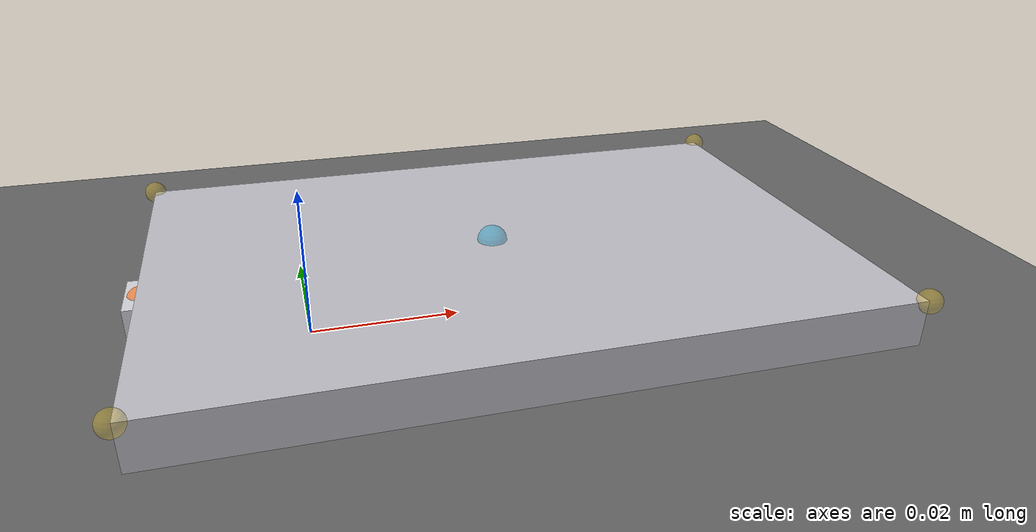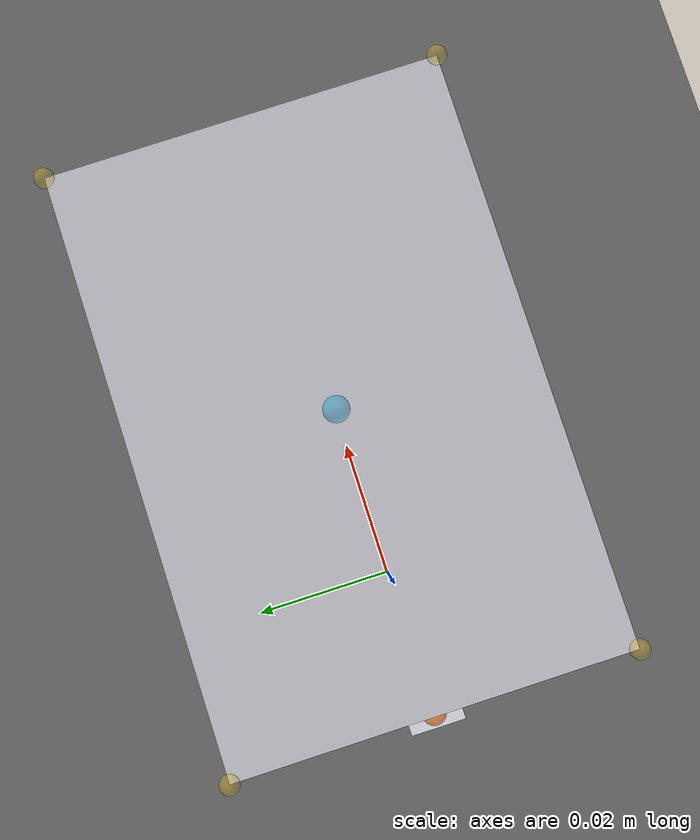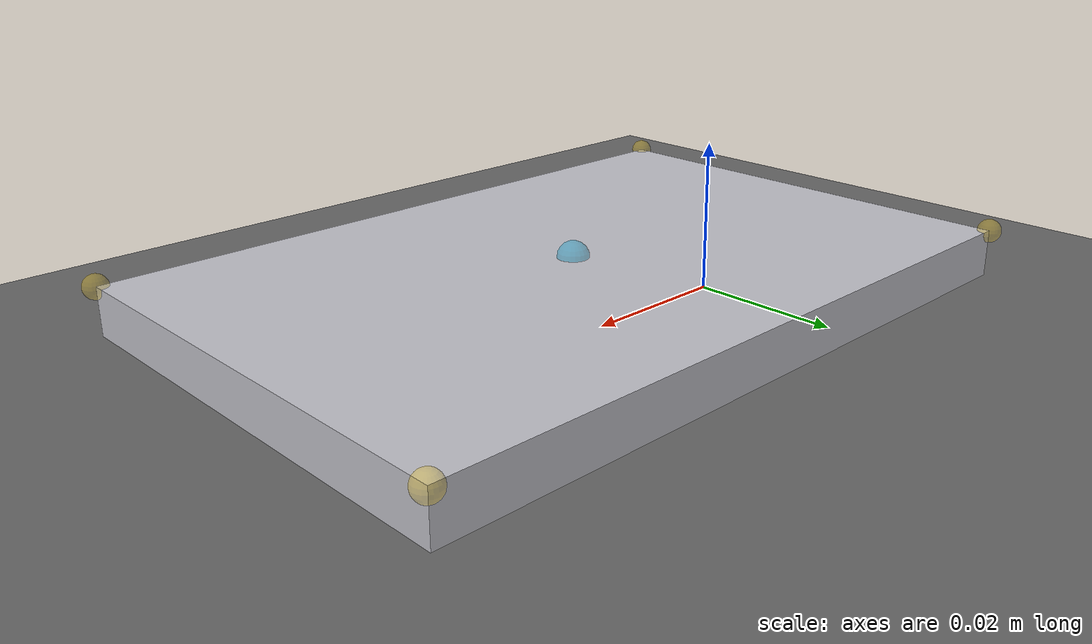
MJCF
<mujoco model="keyboard_battery">

  <compiler angle="radian" autolimits="true"/>

  <option gravity="0 0 -9.81" timestep="0.002"/>

  <asset>
    <material name="lipo_silver"
              rgba="0.75 0.75 0.78 1"
              specular="0.8"
              shininess="0.6"
              reflectance="0.3"/>

    <!-- JST connector end marking -->
    <material name="connector_end"
              rgba="0.85 0.85 0.88 1"
              specular="0.9"
              shininess="0.7"
              reflectance="0.4"/>
  </asset>

  <worldbody>

    <!-- Static ground plane -->
    <geom name="ground" type="plane" size="1 1 0.1"
          pos="0 0 0"
          friction="0.8 0.005 0.0001"
          rgba="0.4 0.4 0.4 1"/>

    <body name="battery" pos="0.025 0 0.00750">

      <inertial pos="0 0 0"
                mass="0.080"
                diaginertia="3.6e-5 1.6e-4 1.8e-4"/>

      <freejoint name="battery_free"/>

      <!-- ── MAIN BATTERY BODY ─────────────────────────────────────────
           Single box — 90mm × 60mm × 6mm
           Half-extents: 0.045, 0.030, 0.003
      -->
      <geom name="battery_body"
            type="box"
            size="0.045 0.030 0.003"
            pos="0 0 0"
            material="lipo_silver"
            density="2400"
            friction="0.6 0.005 0.0001"
            condim="4"
            priority="1"/>

      <geom name="jst_connector"
            type="box"
            size="0.001 0.004 0.002"
            pos="-0.046 0 -0.001"
            material="connector_end"
            density="1050"
            friction="0.6 0.005 0.0001"
            condim="4"
            priority="1"/>

      <!-- ══════════════════════════════════════════════════════════════
           REGISTRATION SITES
           ══════════════════════════════════════════════════════════════ -->

      <!-- Top face center — primary vacuum grasp point -->
      <site name="vacuum_grasp_center"
            type="sphere"
            size="0.002"
            pos="0 0 0.003"
            rgba="0 0.6 0.8 0.4"/>

      <!-- JST connector face marker — robot orientation reference -->
      <!-- Robot must pick with JST side toward USB-C port (-X) -->
      <site name="jst_face"
            type="sphere"
            size="0.002"
            pos="-0.045 0 0"
            rgba="1 0.4 0 0.6"/>

      <!-- Battery body corners — assembly alignment reference -->
      <!-- Used to verify battery is seated in rib tray correctly -->
      <site name="corner_FL"
            type="sphere"
            size="0.0015"
            pos="-0.045 -0.030 0.003"
            rgba="1 0.8 0 0.3"/>

      <site name="corner_FR"
            type="sphere"
            size="0.0015"
            pos="0.045 -0.030 0.003"
            rgba="1 0.8 0 0.3"/>

      <site name="corner_RL"
            type="sphere"
            size="0.0015"
            pos="-0.045 0.030 0.003"
            rgba="1 0.8 0 0.3"/>

      <site name="corner_RR"
            type="sphere"
            size="0.0015"
            pos="0.045 0.030 0.003"
            rgba="1 0.8 0 0.3"/>

    </body>

  </worldbody>

</mujoco>
